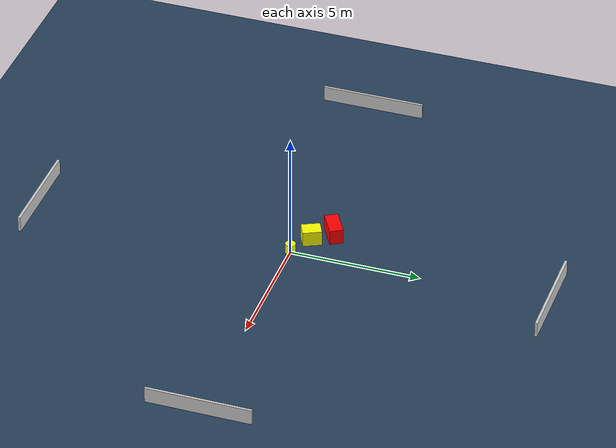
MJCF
<?xml version="1.0" ?>
<mujoco model="generated_environment">
  <option timestep="0.01" integrator="RK4" cone="elliptic"/>
  <default>
    <geom density="1"/>
  </default>
  <asset>
    <texture builtin="gradient" height="3072" name="skybox" rgb1="0.3 0.5 0.7" rgb2="0 0 0" type="skybox" width="512"/>
    <texture builtin="checker" height="300" name="groundplane" rgb1="0.2 0.3 0.4" rgb2="0.1 0.2 0.3" type="2d" width="300"/>
    <material name="groundplane" reflectance="0.2" texrepeat="5 5" texture="groundplane"/>
  </asset>
  <worldbody>
    <light dir="0 0 -1" directional="true" pos="0 0 1.5"/>
    <geom condim="3" friction="0.5 0.005 0.001" material="groundplane" name="floor" pos="0 0 0" size="0 0 0.05" type="plane"/>
    <body name="walls">
      <geom name="wall_1" condim="4" pos="-10.0 0.0 0.3" rgba="0.800000011920929 0.800000011920929 0.800000011920929 1.0" size="0.05 2.0 0.3" type="box"/>
      <geom name="wall_2" condim="4" pos="10.0 0.0 0.3" rgba="0.800000011920929 0.800000011920929 0.800000011920929 1.0" size="0.05 2.0 0.3" type="box"/>
      <geom name="wall_3" condim="4" pos="0.0 -10.0 0.3" rgba="0.800000011920929 0.800000011920929 0.800000011920929 1.0" size="2.0 0.05 0.3" type="box"/>
      <geom name="wall_4" condim="4" pos="0.0 10.0 0.3" rgba="0.800000011920929 0.800000011920929 0.800000011920929 1.0" size="2.0 0.05 0.3" type="box"/>
    </body>
    <body name="robot">
      <joint name="joint_x" type="slide" pos="0 0 0" axis="1 0 0"/>
      <joint name="joint_y" type="slide" pos="0 0 0" axis="0 1 0"/>
      <geom name="robot" type="cylinder" pos="0.0 0.0 0.2" size="0.2 0.2 0.0" mass="5.0" friction="1.0 0.005 0.0001" condim="4" rgba="1.0 1.0 0.0 1.0"/>
    </body>
    <body name="obstacle_1_movable">
      <geom name="obstacle_1_movable" condim="4" pos="-0.9011534606607368 0.5107410685849473 0.3" euler="0 0 115.25837918722318" friction="0.0 0.005 0.001" rgba="1.0 1.0 0.0 1.0" size="0.3621841236824757 0.2852538297248028 0.3" type="box" mass="0.1"/>
      <joint type="free"/>
    </body>
    <body name="obstacle_2_static">
      <geom name="obstacle_2_static" condim="4" pos="-1.5007119305056675 1.189615105736473 0.3" euler="0 0 299.5029930184595" friction="0.0 0.005 0.001" rgba="1.0 0.0 0.0 1.0" size="0.25838723663259017 0.5201432537430235 0.3" type="box"/>
    </body>
  </worldbody>
  <actuator>
    <motor name="actuator_x" joint="joint_x" gear="1" ctrlrange="-1 1"/>
    <motor name="actuator_y" joint="joint_y" gear="1" ctrlrange="-1 1"/>
  </actuator>
</mujoco>
